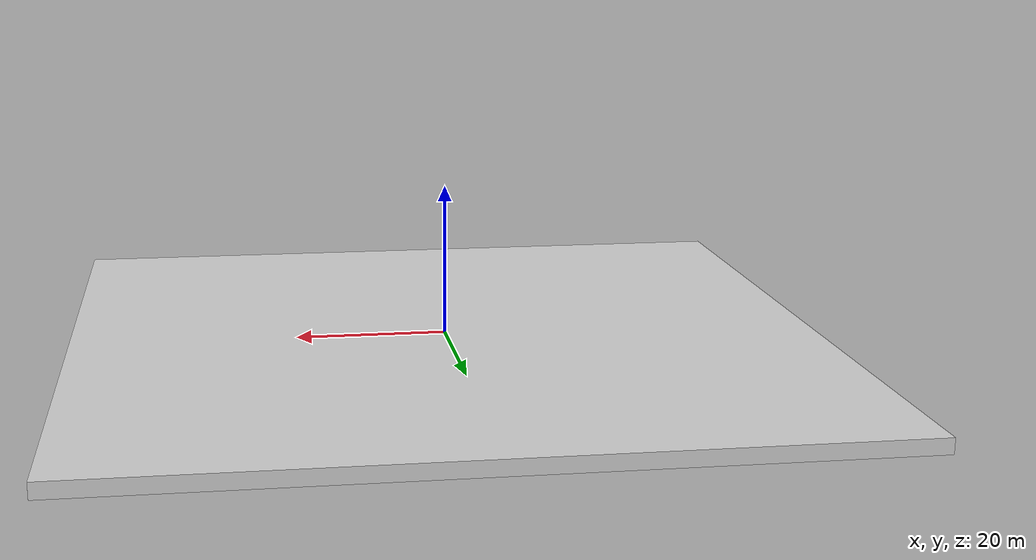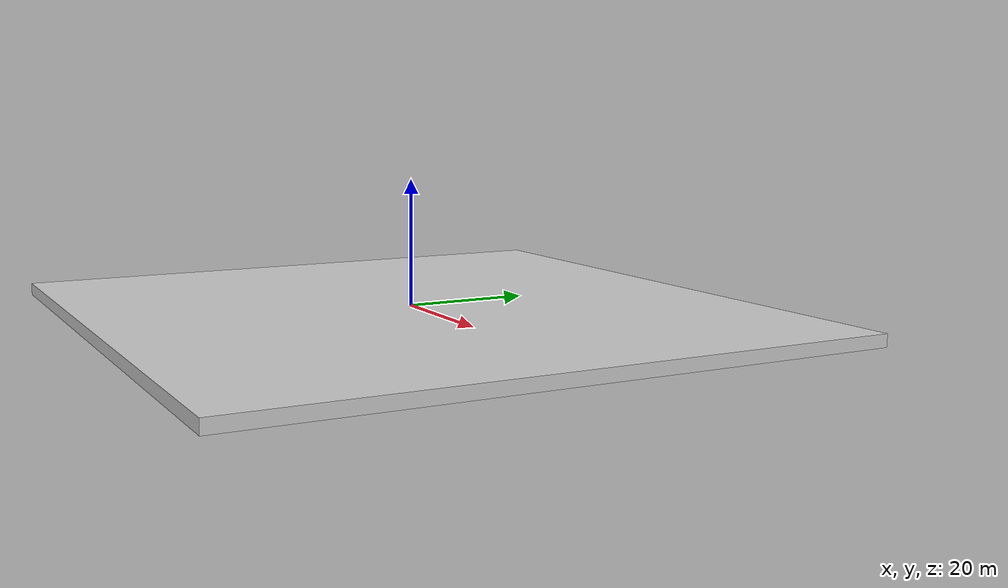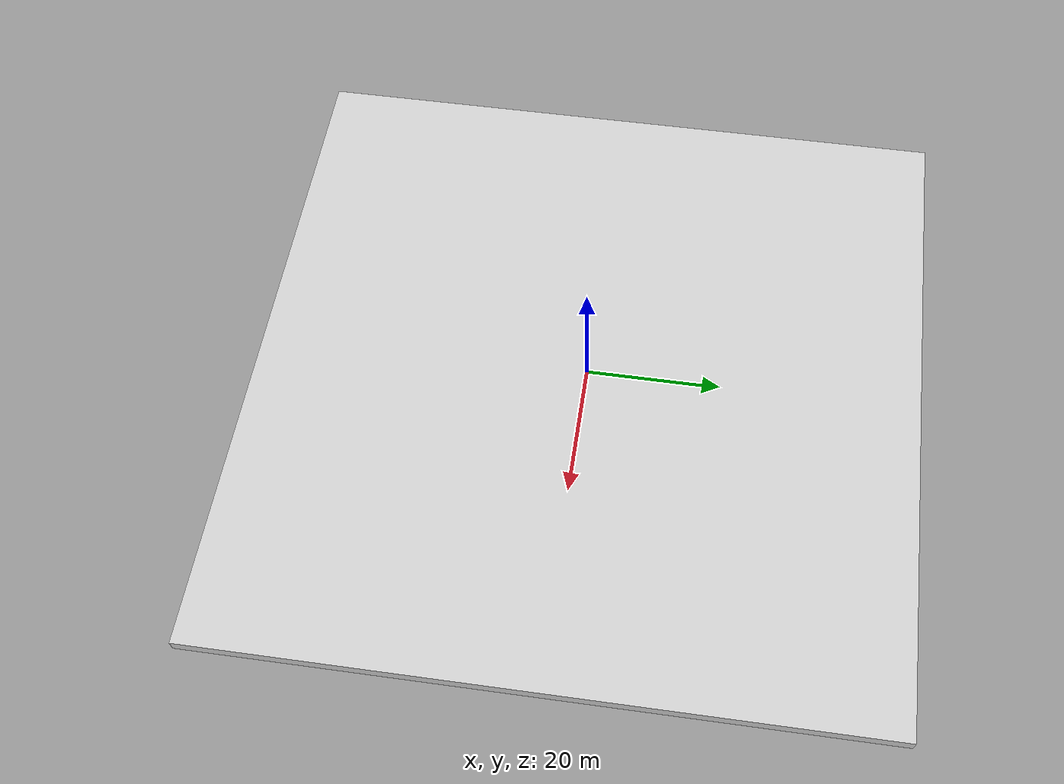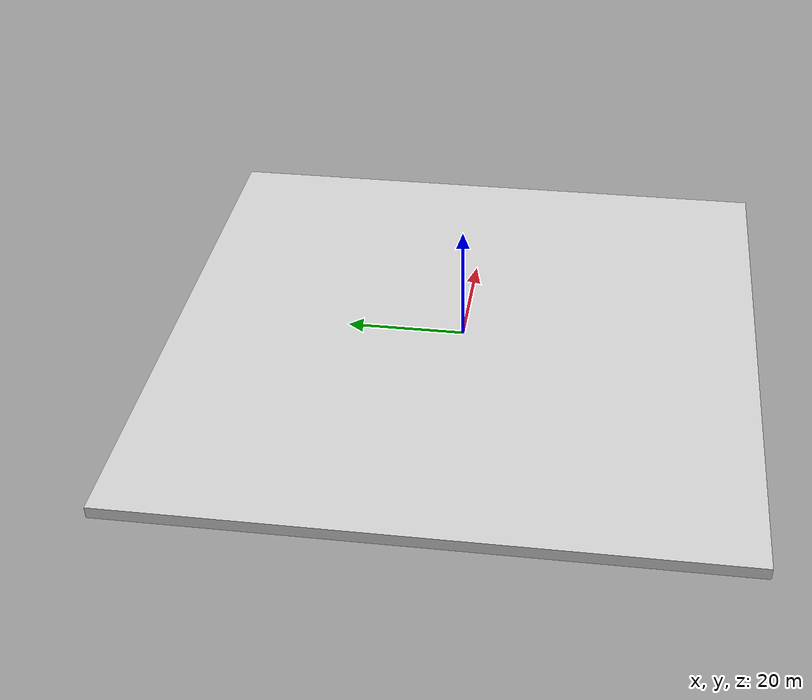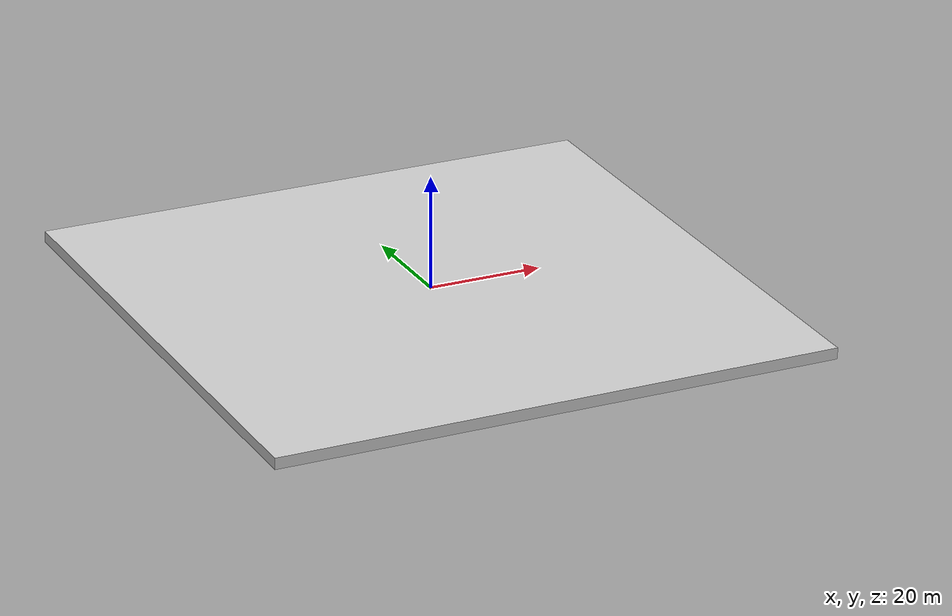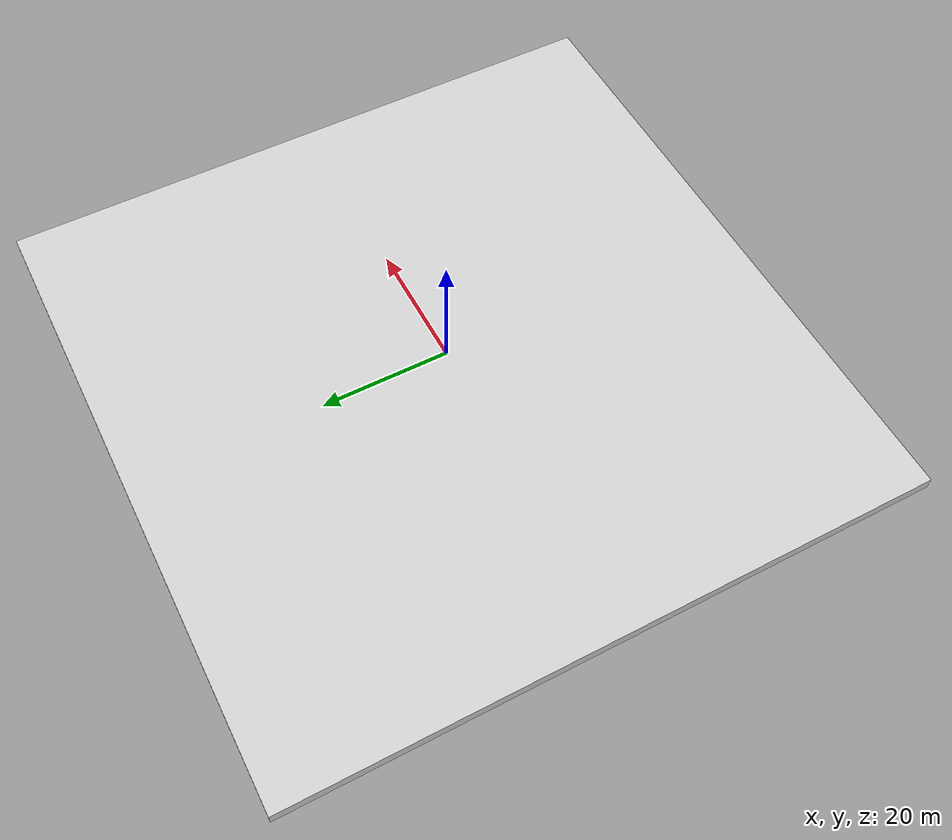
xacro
<?xml version="1.0" encoding="utf-8"?>
<robot name="ground_plane" xmlns:xacro="http://www.ros.org/wiki/xacro">

    <xacro:arg name="terrain" default="rigid"/>
    <xacro:property name="terrain" default="$(arg terrain)"/>

    <xacro:property name="side" default="100"/>

    <xacro:property name="roll"  default="0"/>
    <xacro:property name="pitch" default="0"/>
    <xacro:property name="yaw"   default="0"/>

    <xacro:property name="x" default="0"/>
    <xacro:property name="y" default="0"/>
    <xacro:property name="z" default="-1"/>

    <gazebo>
        <static>true</static>
    </gazebo>

    <link name="ground_plane_link">
        <visual>
            <origin rpy="${roll} ${pitch} ${yaw}" xyz="${x} ${y} ${z}"/>
            <geometry>
                <box size="${side} ${side} 2"/>
            </geometry>

            <xacro:if value="${'rigid' == terrain}">
                <material name="grey">
                    <color rgba="0.8 0.8 0.8 1.0"/>
                </material>
            </xacro:if>

            <xacro:if value="${'soft' == terrain}">
                <material name="green">
                    <color rgba="0.0 0.8 0.0 1.0"/>
                </material>
            </xacro:if>

            <xacro:if value="${'very_soft' == terrain}">
                <material name="gold">
                    <color rgba="0.8 0.8 0.0 1.0"/>
                </material>
            </xacro:if>

        </visual>
        <collision>
            <origin rpy="${roll} ${pitch} ${yaw}" xyz="${x} ${y} ${z}"/>
            <geometry>
                <box size="${side} ${side} 2"/>
            </geometry>
        </collision>
    </link>
    <joint name="ground_plane_link_to_ground_plane_link_inertia" type="fixed">
        <parent link="ground_plane_link"/>
        <child link="ground_plane_link_inertia"/>
    </joint>
    <link name="ground_plane_link_inertia">
        <inertial>
            <origin rpy="0 0 0" xyz="0 0 0"/>
            <mass value="1"/>
            <inertia ixx="1" ixy="0" ixz="0" iyy="1" iyz="0" izz="1"/>
        </inertial>
    </link>

    <xacro:if value="${'rigid' == terrain}">
        <gazebo reference="ground_plane_link">
            <material>Gazebo/Grey</material>
            <kp>1e6</kp>
            <kd>1e2</kd>
        </gazebo>
    </xacro:if>

    <xacro:if value="${'soft' == terrain}">
        <gazebo reference="ground_plane_link">
            <material>Gazebo/Grass</material>
            <kp>5000</kp>
            <kd>100</kd>
        </gazebo>
    </xacro:if>

    <xacro:if value="${'very_soft' == terrain}">
        <gazebo reference="ground_plane_link">
            <material>Gazebo/Gold</material>
            <kp>2000</kp>
            <kd>100</kd>
        </gazebo>
    </xacro:if>

    <gazebo reference="ground_plane_link">
        <mu1>0.5</mu1>
        <mu2>0.5</mu2>
    </gazebo>

</robot>
